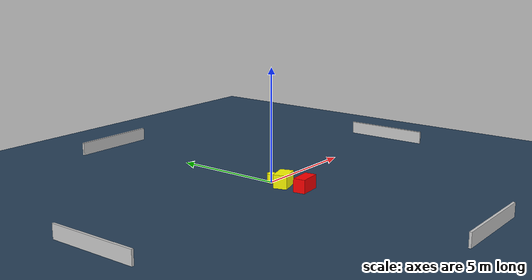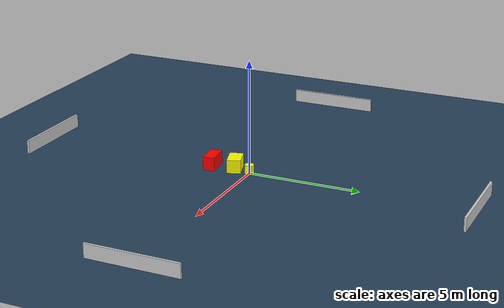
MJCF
<?xml version="1.0" ?>
<mujoco model="generated_environment">
  <option timestep="0.01" integrator="RK4" cone="elliptic"/>
  <default>
    <geom density="1"/>
  </default>
  <asset>
    <texture builtin="gradient" height="3072" name="skybox" rgb1="0.3 0.5 0.7" rgb2="0 0 0" type="skybox" width="512"/>
    <texture builtin="checker" height="300" name="groundplane" rgb1="0.2 0.3 0.4" rgb2="0.1 0.2 0.3" type="2d" width="300"/>
    <material name="groundplane" reflectance="0.2" texrepeat="5 5" texture="groundplane"/>
  </asset>
  <worldbody>
    <light dir="0 0 -1" directional="true" pos="0 0 1.5"/>
    <geom condim="3" friction="0.5 0.005 0.001" material="groundplane" name="floor" pos="0 0 0" size="0 0 0.05" type="plane"/>
    <body name="walls">
      <geom name="wall_1" condim="4" pos="-10.0 0.0 0.3" rgba="0.800000011920929 0.800000011920929 0.800000011920929 1.0" size="0.05 2.0 0.3" type="box"/>
      <geom name="wall_2" condim="4" pos="10.0 0.0 0.3" rgba="0.800000011920929 0.800000011920929 0.800000011920929 1.0" size="0.05 2.0 0.3" type="box"/>
      <geom name="wall_3" condim="4" pos="0.0 -10.0 0.3" rgba="0.800000011920929 0.800000011920929 0.800000011920929 1.0" size="2.0 0.05 0.3" type="box"/>
      <geom name="wall_4" condim="4" pos="0.0 10.0 0.3" rgba="0.800000011920929 0.800000011920929 0.800000011920929 1.0" size="2.0 0.05 0.3" type="box"/>
    </body>
    <body name="robot">
      <joint name="joint_x" type="slide" pos="0 0 0" axis="1 0 0"/>
      <joint name="joint_y" type="slide" pos="0 0 0" axis="0 1 0"/>
      <geom name="robot" type="cylinder" pos="0.0 0.0 0.2" size="0.2 0.2 0.0" mass="5.0" friction="1.0 0.005 0.0001" condim="4" rgba="1.0 1.0 0.0 1.0"/>
    </body>
    <body name="obstacle_1_movable">
      <geom name="obstacle_1_movable" condim="4" pos="-0.1333606955461592 -0.7382195507063201 0.3" euler="0 0 17.032936956452815" friction="0.0 0.005 0.001" rgba="1.0 1.0 0.0 1.0" size="0.4663020757276363 0.3015081464171734 0.3" type="box" mass="0.1"/>
      <joint type="free"/>
    </body>
    <body name="obstacle_2_static">
      <geom name="obstacle_2_static" condim="4" pos="-0.047502932399477595 -1.7849388772028505 0.3" euler="0 0 95.98142800440513" friction="0.0 0.005 0.001" rgba="1.0 0.0 0.0 1.0" size="0.2635950431100838 0.5073500255450341 0.3" type="box"/>
    </body>
  </worldbody>
  <actuator>
    <motor name="actuator_x" joint="joint_x" gear="1" ctrlrange="-1 1"/>
    <motor name="actuator_y" joint="joint_y" gear="1" ctrlrange="-1 1"/>
  </actuator>
</mujoco>
